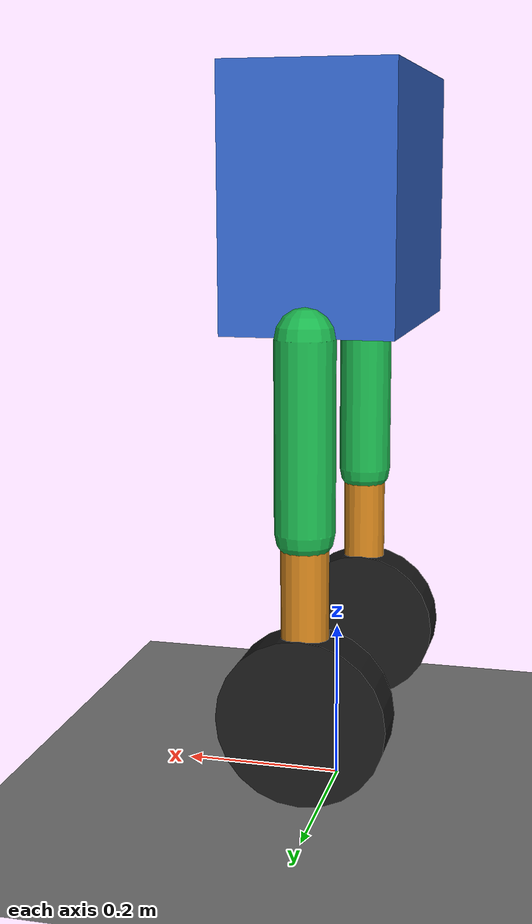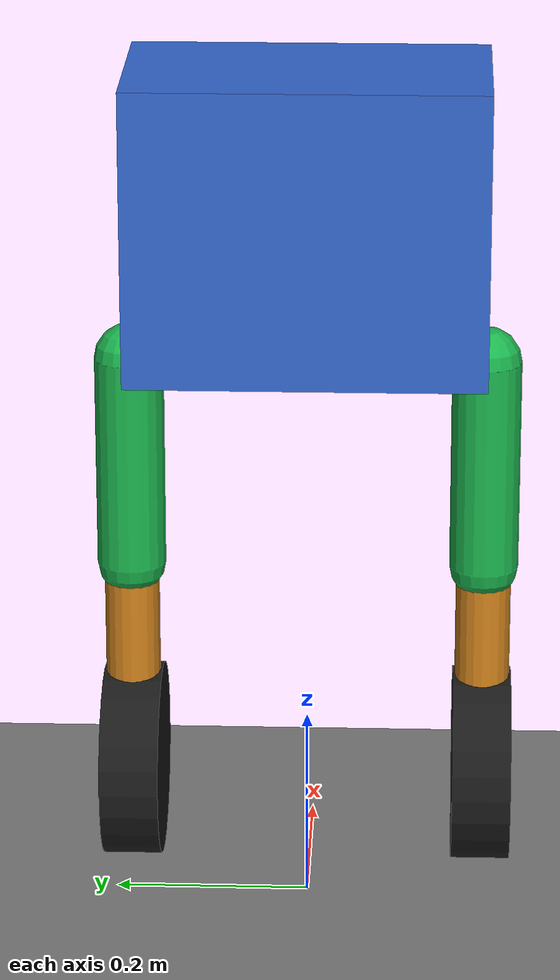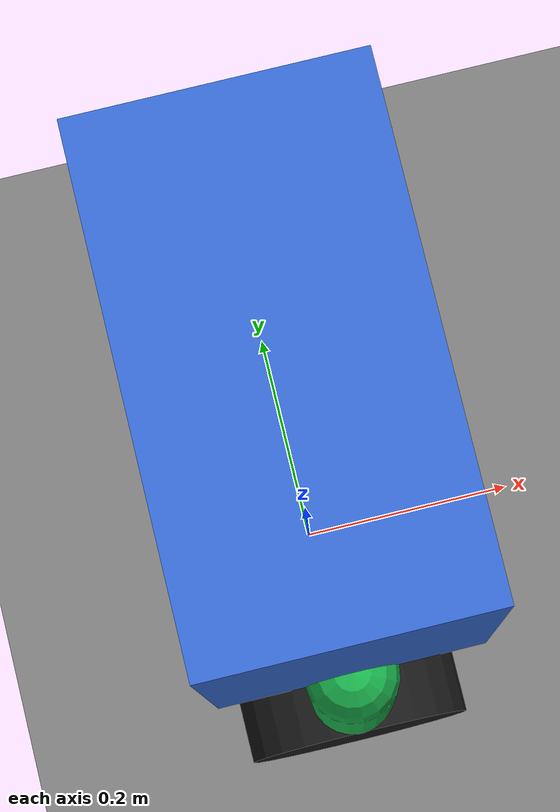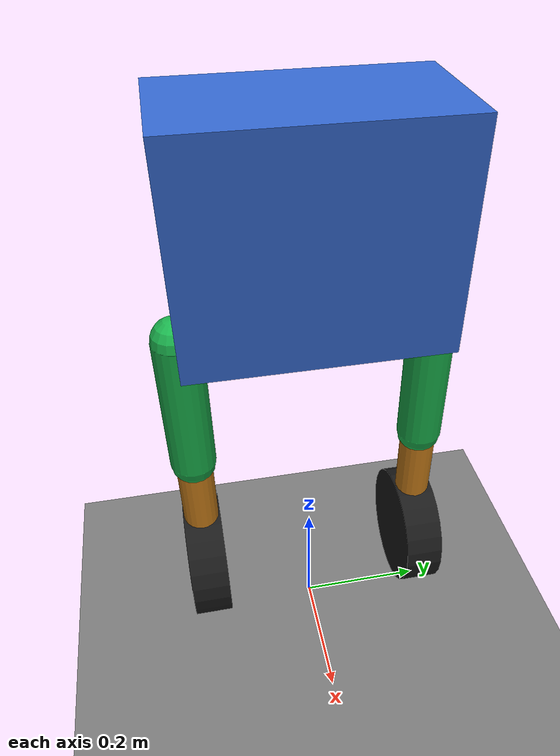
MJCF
<mujoco model="biped_rl_actuator">

    <compiler angle="radian" autolimits="true"/>

    <option timestep="0.002"
            gravity="0 0 -9.81"
            integrator="RK4"
            solver="Newton"
            iterations="80"
            ls_iterations="20"
            cone="elliptic"/>

    <default>
        <!-- AK10-9: реалистичные параметры для joint'ов (будут переопределены) -->
        <joint damping="0.5"
               armature="0.01"
               frictionloss="0.3"/>

        <geom contype="1"
              conaffinity="1"
              condim="6"
              friction="2.0 0.05 0.01"
              solref="0.003 1"
              solimp="0.95 0.99 0.001"/>

        <motor ctrllimited="true"
               ctrlrange="-18 18"/>
    </default>

    <asset>
        <texture type="skybox"
                 builtin="gradient"
                 rgb1="0.6 0.8 1.0"
                 rgb2="0.2 0.4 0.7"
                 width="256"
                 height="256"/>

        <texture name="grid"
                 type="2d"
                 builtin="checker"
                 rgb1="0.55 0.55 0.55"
                 rgb2="0.4 0.4 0.4"
                 width="512"
                 height="512"/>

        <material name="floor_mat"
                  texture="grid"
                  texrepeat="5 5"/>

        <material name="torso_mat"
                  rgba="0.2 0.4 0.8 1"/>

        <material name="thigh_mat"
                  rgba="0.1 0.7 0.3 1"/>

        <material name="shank_mat"
                  rgba="0.8 0.5 0.1 1"/>

        <material name="wheel_mat"
                  rgba="0.1 0.1 0.1 1"/>
    </asset>

    <worldbody>
        <light pos="0 0 3"
               dir="0 0 -1"
               diffuse="0.9 0.9 0.9"/>

        <geom name="floor"
              type="plane"
              size="10 10 0.1"
              material="floor_mat"/>

        <body name="torso" pos="0 0 0.74">
            <freejoint name="root"/>

            <inertial pos="0 0 0"
                      mass="3.0"
                      diaginertia="0.08 0.07 0.05"/>

            <geom name="torso_geom"
                  type="box"
                  size="0.10 0.18 0.15"
                  density="500"
                  material="torso_mat"/>

            <site name="imu"
                  pos="0 0 0"
                  size="0.01"/>

            <body name="L_thigh" pos="0 0.18 -0.15">
                <!-- Реалистичные параметры для бедра -->
                <joint name="L_hip"
                       type="hinge"
                       axis="0 1 0"
                       range="-0.8 0.8"
                       damping="0.5"
                       armature="0.01"
                       frictionloss="0.3"/>

                <inertial pos="0 0 -0.15"
                          mass="1.5"
                          diaginertia="0.015 0.015 0.004"/>

                <geom name="L_thigh_geom"
                      type="capsule"
                      fromto="0 0 0 0 0 -0.22"
                      size="0.035"
                      density="700"
                      material="thigh_mat"/>

                <body name="L_shank" pos="0 0 -0.22">
                    <!-- Реалистичные параметры для колена -->
                    <joint name="L_knee"
                           type="hinge"
                           axis="0 1 0"
                           range="0.0 2.0"
                           damping="0.5"
                           armature="0.01"
                           frictionloss="0.3"/>

                    <inertial pos="0 0 -0.15"
                              mass="0.8"
                              diaginertia="0.008 0.008 0.002"/>

                    <geom name="L_shank_geom"
                          type="capsule"
                          fromto="0 0 0 0 0 -0.22"
                          size="0.028"
                          density="700"
                          material="shank_mat"/>

                    <body name="L_wheel" pos="0 0 -0.22">
                        <!-- Колесо: небольшое вязкое трение, инерция ротора 0.01, сухое трение 0 -->
                        <joint name="L_wheel_j"
                               type="hinge"
                               axis="0 1 0"
                               limited="false"
                               damping="0.05"
                               armature="0.01"
                               frictionloss="0.0"/>

                        <inertial pos="0 0 0"
                                  mass="0.5"
                                  diaginertia="0.003 0.005 0.005"/>

                        <geom name="L_tire"
                              type="cylinder"
                              size="0.10 0.03"
                              euler="1.5708 0 0"
                              material="wheel_mat"
                              friction="1.2 0.02 0.01"
                              condim="6"
                              density="900"/>

                        <site name="L_ct"
                              pos="0 0 0"
                              size="0.01"/>
                    </body>
                </body>
            </body>

            <body name="R_thigh" pos="0 -0.18 -0.15">
                <joint name="R_hip"
                       type="hinge"
                       axis="0 1 0"
                       range="-0.8 0.8"
                       damping="0.5"
                       armature="0.01"
                       frictionloss="0.3"/>

                <inertial pos="0 0 -0.15"
                          mass="1.5"
                          diaginertia="0.015 0.015 0.004"/>

                <geom name="R_thigh_geom"
                      type="capsule"
                      fromto="0 0 0 0 0 -0.22"
                      size="0.035"
                      density="700"
                      material="thigh_mat"/>

                <body name="R_shank" pos="0 0 -0.22">
                    <joint name="R_knee"
                           type="hinge"
                           axis="0 1 0"
                           range="0.0 2.0"
                           damping="0.5"
                           armature="0.01"
                           frictionloss="0.3"/>

                    <inertial pos="0 0 -0.15"
                              mass="0.8"
                              diaginertia="0.008 0.008 0.002"/>

                    <geom name="R_shank_geom"
                          type="capsule"
                          fromto="0 0 0 0 0 -0.22"
                          size="0.028"
                          density="700"
                          material="shank_mat"/>

                    <body name="R_wheel" pos="0 0 -0.22">
                        <joint name="R_wheel_j"
                               type="hinge"
                               axis="0 1 0"
                               limited="false"
                               damping="0.05"
                               armature="0.01"
                               frictionloss="0.0"/>

                        <inertial pos="0 0 0"
                                  mass="0.5"
                                  diaginertia="0.003 0.005 0.005"/>

                        <geom name="R_tire"
                              type="cylinder"
                              size="0.10 0.03"
                              euler="1.5708 0 0"
                              material="wheel_mat"
                              friction="1.2 0.02 0.01"
                              condim="6"
                              density="900"/>

                        <site name="R_ct"
                              pos="0 0 0"
                              size="0.01"/>
                    </body>
                </body>
            </body>
        </body>
    </worldbody>

    <actuator>
        <motor name="L_hip_m"
               joint="L_hip"
               gear="3"
               ctrllimited="true"
               ctrlrange="-18 18"/>

        <motor name="R_hip_m"
               joint="R_hip"
               gear="3"
               ctrllimited="true"
               ctrlrange="-18 18"/>

        <motor name="L_knee_m"
               joint="L_knee"
               gear="3"
               ctrllimited="true"
               ctrlrange="-18 18"/>

        <motor name="R_knee_m"
               joint="R_knee"
               gear="3"
               ctrllimited="true"
               ctrlrange="-18 18"/>

        <motor name="L_wheel_m"
               joint="L_wheel_j"
               gear="3"
               ctrllimited="true"
               ctrlrange="-18 18"/>

        <motor name="R_wheel_m"
               joint="R_wheel_j"
               gear="3"
               ctrllimited="true"
               ctrlrange="-18 18"/>
    </actuator>

    <sensor>
        <accelerometer name="imu_acc" site="imu"/>
        <gyro          name="imu_gyro" site="imu"/>

        <jointpos name="L_hip_pos"  joint="L_hip"/>
        <jointvel name="L_hip_vel"  joint="L_hip"/>

        <jointpos name="L_knee_pos" joint="L_knee"/>
        <jointvel name="L_knee_vel" joint="L_knee"/>

        <jointpos name="R_hip_pos"  joint="R_hip"/>
        <jointvel name="R_hip_vel"  joint="R_hip"/>

        <jointpos name="R_knee_pos" joint="R_knee"/>
        <jointvel name="R_knee_vel" joint="R_knee"/>

        <actuatorfrc name="L_hip_frc"
                     actuator="L_hip_m"/>
        <actuatorfrc name="L_knee_frc"
                     actuator="L_knee_m"/>
        <actuatorfrc name="R_hip_frc"
                     actuator="R_hip_m"/>
        <actuatorfrc name="R_knee_frc"
                     actuator="R_knee_m"/>

        <touch name="L_contact" site="L_ct"/>
        <touch name="R_contact" site="R_ct"/>
    </sensor>

</mujoco>
